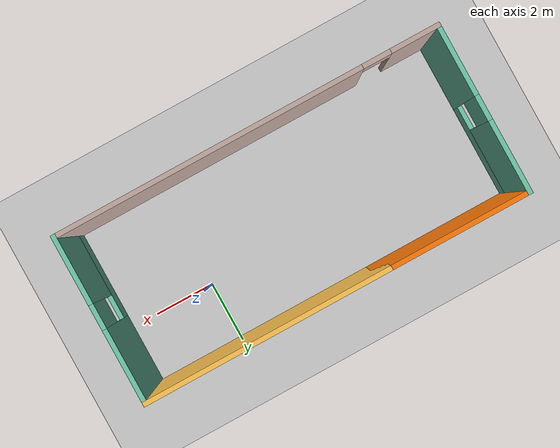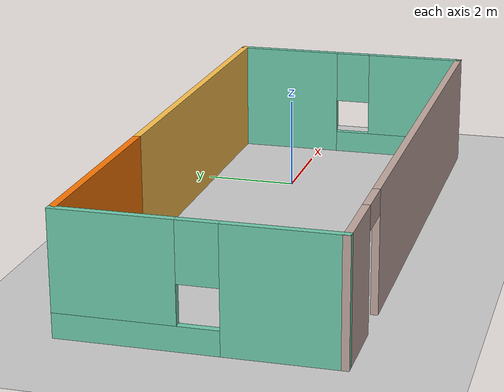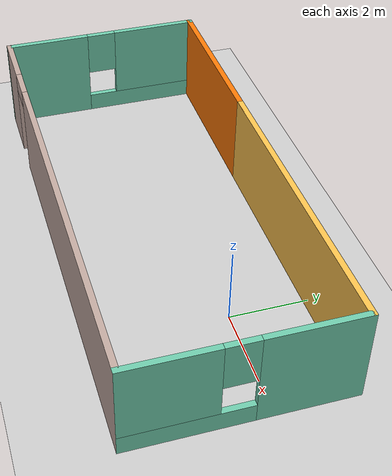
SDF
<sdf version="1.6">
 <world name="default">
  <light name="sun" type="directional">
   <pose>0 0 10 0 -0 0</pose>
   <diffuse>0.8 0.8 0.8 1</diffuse>
   <specular>0.1 0.1 0.1 1</specular>
   <attenuation>
    <range>1000</range>
    <constant>0.9</constant>
    <linear>0.01</linear>
    <quadratic>0.001</quadratic>
   </attenuation>
   <direction>-0.5 0.5 -1</direction>
  </light>
  <model name="ground_plane">
   <static>1</static>
   <link name="link">
    <collision name="collision">
     <geometry><plane><normal>0 0 1</normal><size>100 100</size></plane></geometry>
     <surface><friction><ode><mu>100</mu><mu2>50</mu2></ode></friction></surface>
    </collision>
    <visual name="visual">
     <cast_shadows>0</cast_shadows>
     <geometry><plane><normal>0 0 1</normal><size>100 100</size></plane></geometry>
     <material>
      <script><uri>file://media/materials/scripts/gazebo.material</uri><name>Gazebo/Grey</name></script>
     </material>
    </visual>
   </link>
  </model>
  <gravity>0 0 -9.8</gravity>
  <magnetic_field>6e-06 2.3e-05 -4.2e-05</magnetic_field>
  <atmosphere type="adiabatic"/>
  <physics name="default_physics" default="0" type="ode">
   <max_step_size>0.001</max_step_size>
   <real_time_factor>1</real_time_factor>
   <real_time_update_rate>1000</real_time_update_rate>
  </physics>
  <scene><ambient>0.4 0.4 0.4 1</ambient><background>0.7 0.7 0.7 1</background><shadows>1</shadows></scene>
  <spherical_coordinates>
   <surface_model>EARTH_WGS84</surface_model>
   <latitude_deg>0</latitude_deg>
   <longitude_deg>0</longitude_deg>
   <elevation>0</elevation>
   <heading_deg>0</heading_deg>
  </spherical_coordinates>
  <model name="Untitled">
   <pose>-3.2765 -0.725 0 0 -0 0</pose>
   <link name="Wall_3">
    <collision name="Wall_3_Collision">
     <geometry><box><size>8 0.15 2.5</size></box></geometry>
     <pose>0 0 1.25 0 -0 0</pose>
    </collision>
    <visual name="Wall_3_Visual">
     <pose>0 0 1.25 0 -0 0</pose>
     <geometry><box><size>8 0.15 2.5</size></box></geometry>
     <material>
      <script><uri>file://media/materials/scripts/gazebo.material</uri><name>Gazebo/Grey</name></script>
      <ambient>1 0.764706 0.305882 1</ambient>
     </material>
    </visual>
    <pose>2.25 2.675 0 0 -0 0</pose>
   </link>
   <link name="Wall_4">
    <pose>6.175 0 0 0 0 -1.5708</pose>
    <visual name="Wall_4_Visual_0">
     <pose>-1.52338 0 1.25 0 -0 0</pose>
     <geometry><box><size>2.45325 0.15 2.5</size></box></geometry>
     <material>
      <script><uri>file://media/materials/scripts/gazebo.material</uri><name>Gazebo/Grey</name></script>
      <ambient>0.435294 0.796078 0.67451 1</ambient>
     </material>
    </visual>
    <collision name="Wall_4_Collision_0">
     <geometry><box><size>2.45325 0.15 2.5</size></box></geometry>
     <pose>-1.52338 0 1.25 0 -0 0</pose>
    </collision>
    <visual name="Wall_4_Visual_1">
     <pose>1.22662 0 0.25 0 -0 0</pose>
     <geometry><box><size>3.04675 0.15 0.5</size></box></geometry>
     <material>
      <script><uri>file://media/materials/scripts/gazebo.material</uri><name>Gazebo/Grey</name></script>
      <ambient>0.435294 0.796078 0.67451 1</ambient>
     </material>
    </visual>
    <collision name="Wall_4_Collision_1">
     <geometry><box><size>3.04675 0.15 0.5</size></box></geometry>
     <pose>1.22662 0 0.25 0 -0 0</pose>
    </collision>
    <visual name="Wall_4_Visual_2">
     <pose>1.62662 0 1.5 0 -0 0</pose>
     <geometry><box><size>2.24675 0.15 2</size></box></geometry>
     <material>
      <script><uri>file://media/materials/scripts/gazebo.material</uri><name>Gazebo/Grey</name></script>
      <ambient>0.435294 0.796078 0.67451 1</ambient>
     </material>
    </visual>
    <collision name="Wall_4_Collision_2">
     <geometry><box><size>2.24675 0.15 2</size></box></geometry>
     <pose>1.62662 0 1.5 0 -0 0</pose>
    </collision>
    <visual name="Wall_4_Visual_3">
     <pose>0.103248 0 1.9 0 -0 0</pose>
     <geometry><box><size>0.8 0.15 1.2</size></box></geometry>
     <material>
      <script><uri>file://media/materials/scripts/gazebo.material</uri><name>Gazebo/Grey</name></script>
      <ambient>0.435294 0.796078 0.67451 1</ambient>
     </material>
    </visual>
    <collision name="Wall_4_Collision_3">
     <geometry><box><size>0.8 0.15 1.2</size></box></geometry>
     <pose>0.103248 0 1.9 0 -0 0</pose>
    </collision>
   </link>
   <link name="Wall_5">
    <pose>0 -2.675 0 0 -0 3.14159</pose>
    <visual name="Wall_5_Visual_0">
     <pose>-1.24628 0 1.25 0 -0 0</pose>
     <geometry><box><size>10.0074 0.15 2.5</size></box></geometry>
     <material>
      <script><uri>file://media/materials/scripts/gazebo.material</uri><name>Gazebo/Grey</name></script>
      <ambient>0.760784 0.662745 0.627451 1</ambient>
     </material>
    </visual>
    <collision name="Wall_5_Collision_0">
     <geometry><box><size>10.0074 0.15 2.5</size></box></geometry>
     <pose>-1.24628 0 1.25 0 -0 0</pose>
    </collision>
    <visual name="Wall_5_Visual_1">
     <pose>5.45372 0 1.25 0 -0 0</pose>
     <geometry><box><size>1.59257 0.15 2.5</size></box></geometry>
     <material>
      <script><uri>file://media/materials/scripts/gazebo.material</uri><name>Gazebo/Grey</name></script>
      <ambient>0.760784 0.662745 0.627451 1</ambient>
     </material>
    </visual>
    <collision name="Wall_5_Collision_1">
     <geometry><box><size>1.59257 0.15 2.5</size></box></geometry>
     <pose>5.45372 0 1.25 0 -0 0</pose>
    </collision>
    <visual name="Wall_5_Visual_2">
     <pose>4.20744 0 2.25 0 -0 0</pose>
     <geometry><box><size>0.9 0.15 0.5</size></box></geometry>
     <material>
      <script><uri>file://media/materials/scripts/gazebo.material</uri><name>Gazebo/Grey</name></script>
      <ambient>0.760784 0.662745 0.627451 1</ambient>
     </material>
    </visual>
    <collision name="Wall_5_Collision_2">
     <geometry><box><size>0.9 0.15 0.5</size></box></geometry>
     <pose>4.20744 0 2.25 0 -0 0</pose>
    </collision>
   </link>
   <link name="Wall_6">
    <pose>-6.175 0 0 0 -0 1.5708</pose>
    <visual name="Wall_6_Visual_0">
     <pose>-1.58672 0 1.25 0 -0 0</pose>
     <geometry><box><size>2.32655 0.15 2.5</size></box></geometry>
     <material>
      <script><uri>file://media/materials/scripts/gazebo.material</uri><name>Gazebo/Grey</name></script>
      <ambient>0.435294 0.796078 0.67451 1</ambient>
     </material>
    </visual>
    <collision name="Wall_6_Collision_0">
     <geometry><box><size>2.32655 0.15 2.5</size></box></geometry>
     <pose>-1.58672 0 1.25 0 -0 0</pose>
    </collision>
    <visual name="Wall_6_Visual_1">
     <pose>1.16328 0 0.25 0 -0 0</pose>
     <geometry><box><size>3.17345 0.15 0.5</size></box></geometry>
     <material>
      <script><uri>file://media/materials/scripts/gazebo.material</uri><name>Gazebo/Grey</name></script>
      <ambient>0.435294 0.796078 0.67451 1</ambient>
     </material>
    </visual>
    <collision name="Wall_6_Collision_1">
     <geometry><box><size>3.17345 0.15 0.5</size></box></geometry>
     <pose>1.16328 0 0.25 0 -0 0</pose>
    </collision>
    <visual name="Wall_6_Visual_2">
     <pose>1.56328 0 1.5 0 -0 0</pose>
     <geometry><box><size>2.37345 0.15 2</size></box></geometry>
     <material>
      <script><uri>file://media/materials/scripts/gazebo.material</uri><name>Gazebo/Grey</name></script>
      <ambient>0.435294 0.796078 0.67451 1</ambient>
     </material>
    </visual>
    <collision name="Wall_6_Collision_2">
     <geometry><box><size>2.37345 0.15 2</size></box></geometry>
     <pose>1.56328 0 1.5 0 -0 0</pose>
    </collision>
    <visual name="Wall_6_Visual_3">
     <pose>-0.023447 0 1.9 0 -0 0</pose>
     <geometry><box><size>0.8 0.15 1.2</size></box></geometry>
     <material>
      <script><uri>file://media/materials/scripts/gazebo.material</uri><name>Gazebo/Grey</name></script>
      <ambient>0.435294 0.796078 0.67451 1</ambient>
     </material>
    </visual>
    <collision name="Wall_6_Collision_3">
     <geometry><box><size>0.8 0.15 1.2</size></box></geometry>
     <pose>-0.023447 0 1.9 0 -0 0</pose>
    </collision>
   </link>
   <link name="Wall_7">
    <collision name="Wall_7_Collision">
     <geometry><box><size>5 0.15 2.5</size></box></geometry>
     <pose>0 0 1.25 0 -0 0</pose>
    </collision>
    <visual name="Wall_7_Visual">
     <pose>0 0 1.25 0 -0 0</pose>
     <geometry><box><size>5 0.15 2.5</size></box></geometry>
     <material>
      <script><uri>file://media/materials/scripts/gazebo.material</uri><name>Gazebo/Grey</name></script>
      <ambient>0.996078 0.47451 0.0196078 1</ambient>
     </material>
    </visual>
    <pose>-3.75 2.675 0 0 -0 0</pose>
   </link>
   <static>1</static>
  </model>
 </world>
</sdf>
